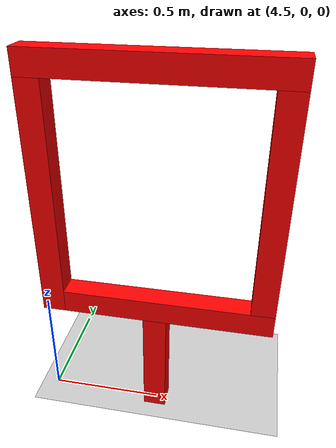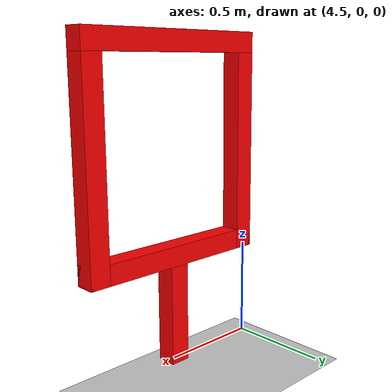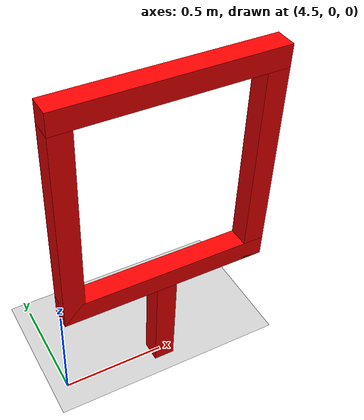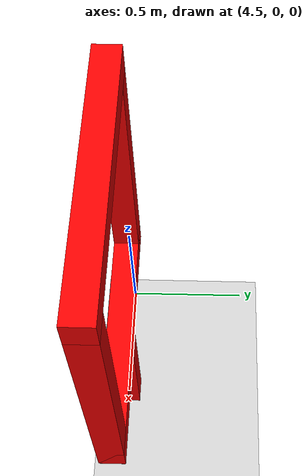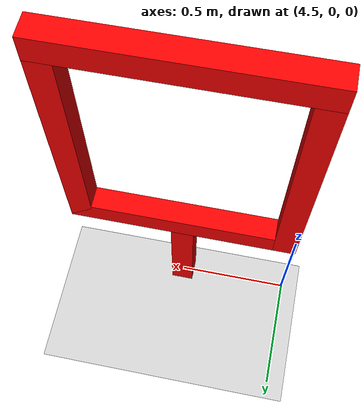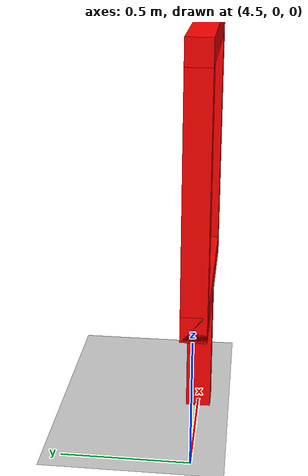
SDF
<?xml version="1.0" encoding="UTF-8"?>
<sdf version="1.9">
  <world name="puerta">
    <physics type="ode">
      <max_step_size>0.004</max_step_size>
      <real_time_factor>1.0</real_time_factor>
      <real_time_update_rate>250</real_time_update_rate>
    </physics>
    <gravity>0 0 -9.8</gravity>
    <magnetic_field>6e-06 2.3e-05 -4.2e-05</magnetic_field>
    <atmosphere type="adiabatic"/>
    <scene>
      <grid>false</grid>
      <ambient>0.4 0.4 0.4 1</ambient>
      <background>0.7 0.7 0.7 1</background>
      <shadows>true</shadows>
    </scene>
    <model name="ground_plane">
      <static>true</static>
      <link name="link">
        <collision name="collision">
          <geometry>
            <plane>
              <normal>0 0 1</normal>
              <size>1 1</size>
            </plane>
          </geometry>
          <surface>
            <friction>
              <ode/>
            </friction>
            <bounce/>
            <contact/>
          </surface>
        </collision>
        <visual name="visual">
          <geometry>
            <plane>
              <normal>0 0 1</normal>
              <size>500 500</size>
            </plane>
          </geometry>
          <material>
            <ambient>0.8 0.8 0.8 1</ambient>
            <diffuse>0.8 0.8 0.8 1</diffuse>
            <specular>0.8 0.8 0.8 1</specular>
          </material>
        </visual>
        <pose>0 0 0 0 -0 0</pose>
        <inertial>
          <pose>0 0 0 0 -0 0</pose>
          <mass>1</mass>
          <inertia>
            <ixx>1</ixx>
            <ixy>0</ixy>
            <ixz>0</ixz>
            <iyy>1</iyy>
            <iyz>0</iyz>
            <izz>1</izz>
          </inertia>
        </inertial>
        <enable_wind>false</enable_wind>
      </link>
      <pose>0 0 0 0 -0 0</pose>
      <self_collide>false</self_collide>
    </model>
    <model name="puerta_marco_con_soporte">
      <static>true</static>

      <!-- Soporte (palo central que sujeta al marco al suelo) -->
      <!-- Dimensiones: 0.1 x 0.1 x 0.5, con su base en z=0 y tope en z=0.5 -->
      <link name="soporte">
        <pose>0 0 0.25 0 0 0</pose>
        <collision name="col_soporte">
          <geometry>
            <box>
              <size>0.1 0.1 0.5</size>
            </box>
          </geometry>
        </collision>
        <visual name="vis_soporte">
          <geometry>
            <box>
              <size>0.1 0.1 0.5</size>
            </box>
          </geometry>
          <material>
            <ambient>1 0 0 1</ambient>
            <diffuse>1 0 0 1</diffuse>
          </material>
        </visual>
      </link>

      <!-- Marco: compuesto de 4 barras que forman un cuadrado hueco -->
      <!-- Se ubica elevado para que su parte inferior se asiente sobre el soporte -->
      <!-- Para un marco de 1 m x 1 m, con barras de 0.1 m de grosor, definimos: -->
      <!-- - Barra inferior: centro en (0,0,0.55), extiende de z=0.5 a z=0.6 -->
      <!-- - Barra superior: centro en (0,0,1.55), extiende de z=1.5 a z=1.6 -->
      <!-- - Barra izquierda: centro en (-0.45,0,1.0), extiende en x de -0.5 a -0.4 -->
      <!-- - Barra derecha: centro en (0.45,0,1.0), extiende en x de 0.4 a 0.5 -->

      <!-- Barra inferior (horizontal) -->
      <link name="barra_inferior">
        <pose>0 0 0.55 0 0 0</pose>
        <collision name="col_inferior">
          <geometry>
            <box>
              <size>1.0 0.1 0.1</size>
            </box>
          </geometry>
        </collision>
        <visual name="vis_inferior">
          <geometry>
            <box>
              <size>1.0 0.1 0.1</size>
            </box>
          </geometry>
          <material>
            <ambient>1 0 0 1</ambient>
            <diffuse>1 0 0 1</diffuse>
          </material>
        </visual>
      </link>

      <!-- Barra superior (horizontal) -->
      <link name="barra_superior">
        <pose>0 0 1.55 0 0 0</pose>
        <collision name="col_superior">
          <geometry>
            <box>
              <size>1.0 0.1 0.1</size>
            </box>
          </geometry>
        </collision>
        <visual name="vis_superior">
          <geometry>
            <box>
              <size>1.0 0.1 0.1</size>
            </box>
          </geometry>
          <material>
            <ambient>1 0 0 1</ambient>
            <diffuse>1 0 0 1</diffuse>
          </material>
        </visual>
      </link>

      <!-- Barra izquierda (vertical) -->
      <link name="barra_izquierda">
        <pose>-0.45 0 1.0 0 0 0</pose>
        <collision name="col_izquierda">
          <geometry>
            <box>
              <size>0.1 0.1 1.0</size>
            </box>
          </geometry>
        </collision>
        <visual name="vis_izquierda">
          <geometry>
            <box>
              <size>0.1 0.1 1.0</size>
            </box>
          </geometry>
          <material>
            <ambient>1 0 0 1</ambient>
            <diffuse>1 0 0 1</diffuse>
          </material>
        </visual>
      </link>

      <!-- Barra derecha (vertical) -->
      <link name="barra_derecha">
        <pose>0.45 0 1.0 0 0 0</pose>
        <collision name="col_derecha">
          <geometry>
            <box>
              <size>0.1 0.1 1.0</size>
            </box>
          </geometry>
        </collision>
        <visual name="vis_derecha">
          <geometry>
            <box>
              <size>0.1 0.1 1.0</size>
            </box>
          </geometry>
          <material>
            <ambient>1 0 0 1</ambient>
            <diffuse>1 0 0 1</diffuse>
          </material>
        </visual>
      </link>

      <!-- Joints para unir las partes del marco y el soporte -->
      <!-- Se usan joints fijos para que actúen como una única estructura -->

      <!-- Junta entre el soporte y la barra inferior -->
      <joint name="joint_soporte_inferior" type="fixed">
        <parent>soporte</parent>
        <child>barra_inferior</child>
        <!-- La unión se realiza en el punto donde la parte superior del soporte (z=0.5) coincide aproximadamente con la parte inferior de la barra inferior (z=0.5) -->
        <pose>0 0 0.3 0 0 0</pose>
      </joint>

      <!-- Junta entre la barra inferior y la barra izquierda -->
      <joint name="joint_inferior_izquierda" type="fixed">
        <parent>barra_inferior</parent>
        <child>barra_izquierda</child>
        <!-- La unión se realiza en el borde izquierdo de la barra inferior -->
        <pose>-0.5 0 0 0 0 0</pose>
      </joint>

      <!-- Junta entre la barra inferior y la barra_derecha -->
      <joint name="joint_inferior_derecha" type="fixed">
        <parent>barra_inferior</parent>
        <child>barra_derecha</child>
        <pose>0.5 0 0 0 0 0</pose>
      </joint>

      <!-- Junta entre la barra inferior y la barra superior -->
      <joint name="joint_inferior_superior" type="fixed">
        <parent>barra_inferior</parent>
        <child>barra_superior</child>
        <pose>0 0 1 0 0 0</pose>
      </joint>

      <pose>5 0 0 0 0 0</pose>
    </model>
    <light name="sunUTC" type="directional">
      <pose>0 0 500 0 -0 0</pose>
      <cast_shadows>true</cast_shadows>
      <intensity>1</intensity>
      <direction>0.001 0.625 -0.78</direction>
      <diffuse>0.904 0.904 0.904 1</diffuse>
      <specular>0.271 0.271 0.271 1</specular>
      <attenuation>
        <range>2000</range>
        <linear>0</linear>
        <constant>1</constant>
        <quadratic>0</quadratic>
      </attenuation>
      <spot>
        <inner_angle>0</inner_angle>
        <outer_angle>0</outer_angle>
        <falloff>0</falloff>
      </spot>
    </light>
    <spherical_coordinates>
      <surface_model>EARTH_WGS84</surface_model>
      <world_frame_orientation>ENU</world_frame_orientation>
      <latitude_deg>47.397971057728974</latitude_deg>
      <longitude_deg> 8.546163739800146</longitude_deg>
      <elevation>0</elevation>
    </spherical_coordinates>
  </world>
</sdf>
